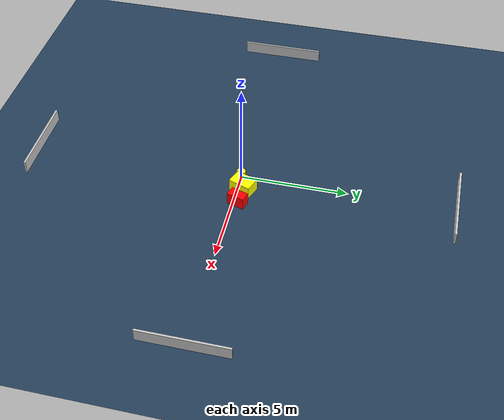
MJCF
<?xml version="1.0" ?>
<mujoco model="generated_environment">
  <option timestep="0.01" integrator="RK4" cone="elliptic"/>
  <default>
    <geom density="1"/>
  </default>
  <asset>
    <texture builtin="gradient" height="3072" name="skybox" rgb1="0.3 0.5 0.7" rgb2="0 0 0" type="skybox" width="512"/>
    <texture builtin="checker" height="300" name="groundplane" rgb1="0.2 0.3 0.4" rgb2="0.1 0.2 0.3" type="2d" width="300"/>
    <material name="groundplane" reflectance="0.2" texrepeat="5 5" texture="groundplane"/>
  </asset>
  <worldbody>
    <light dir="0 0 -1" directional="true" pos="0 0 1.5"/>
    <geom condim="3" friction="0.5 0.005 0.001" material="groundplane" name="floor" pos="0 0 0" size="0 0 0.05" type="plane"/>
    <body name="walls">
      <geom name="wall_1" condim="4" pos="-10.0 0.0 0.3" rgba="0.800000011920929 0.800000011920929 0.800000011920929 1.0" size="0.05 2.0 0.3" type="box"/>
      <geom name="wall_2" condim="4" pos="10.0 0.0 0.3" rgba="0.800000011920929 0.800000011920929 0.800000011920929 1.0" size="0.05 2.0 0.3" type="box"/>
      <geom name="wall_3" condim="4" pos="0.0 -10.0 0.3" rgba="0.800000011920929 0.800000011920929 0.800000011920929 1.0" size="2.0 0.05 0.3" type="box"/>
      <geom name="wall_4" condim="4" pos="0.0 10.0 0.3" rgba="0.800000011920929 0.800000011920929 0.800000011920929 1.0" size="2.0 0.05 0.3" type="box"/>
    </body>
    <body name="robot">
      <joint name="joint_x" type="slide" pos="0 0 0" axis="1 0 0"/>
      <joint name="joint_y" type="slide" pos="0 0 0" axis="0 1 0"/>
      <geom name="robot" type="cylinder" pos="0.0 0.0 0.2" size="0.2 0.2 0.0" mass="5.0" friction="1.0 0.005 0.0001" condim="4" rgba="1.0 1.0 0.0 1.0"/>
    </body>
    <body name="obstacle_1_movable">
      <geom name="obstacle_1_movable" condim="4" pos="0.7960079800042561 0.2706073484430063 0.3" euler="0 0 159.49648256784613" friction="0.0 0.005 0.001" rgba="1.0 1.0 0.0 1.0" size="0.3664208391528886 0.5301615645883138 0.3" type="box" mass="0.1"/>
      <joint type="free"/>
    </body>
    <body name="obstacle_2_static">
      <geom name="obstacle_2_static" condim="4" pos="1.7288541598630494 0.22234746403399852 0.3" euler="0 0 252.02664563524993" friction="0.0 0.005 0.001" rgba="1.0 0.0 0.0 1.0" size="0.41329371562298245 0.23485569167687403 0.3" type="box"/>
    </body>
  </worldbody>
  <actuator>
    <motor name="actuator_x" joint="joint_x" gear="1" ctrlrange="-1 1"/>
    <motor name="actuator_y" joint="joint_y" gear="1" ctrlrange="-1 1"/>
  </actuator>
</mujoco>
